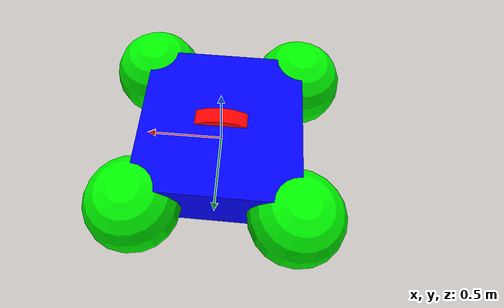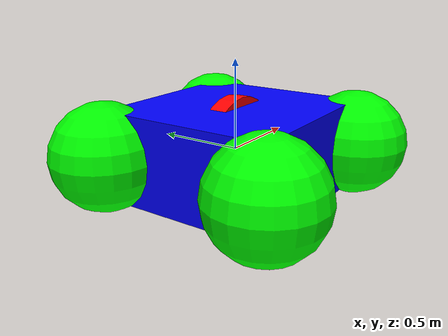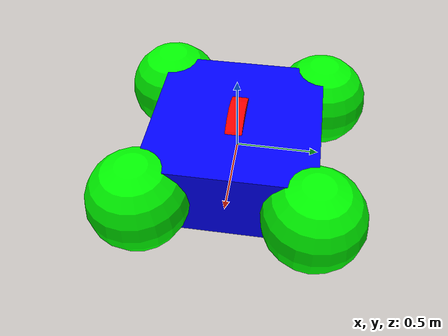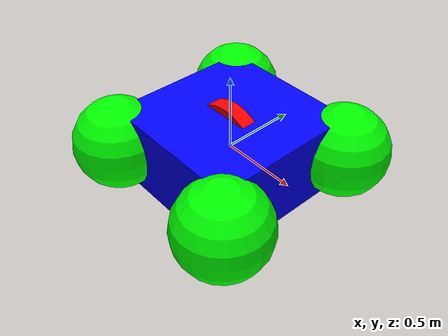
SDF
<sdf version='1.8'>
  <model name="HolonomicRobo">
  <pose>0 0 0 0 0 0</pose>

    <link name="base_footprint"/>

    <link name="base_link">
      <pose>0 0 0 0 0 0</pose>
      <inertial> <!--inertial properties of the link mass, inertia matix-->
        <mass>114.395</mass>
        <inertia>
            <ixx>9.5329</ixx>
            <ixy>0</ixy>
            <ixz>0</ixz>
            <iyy>38.1317</iyy>
            <iyz>0</iyz>
            <izz>47.6646</izz>
        </inertia>
      </inertial>
      <visual name='visual'>
        <geometry>
            <box>
                <size>1.0 1.0 0.5</size>
            </box>
        </geometry>
        <!--let's add color to our link-->
        <material>
            <ambient>0.0 0.0 1.0 1</ambient>
            <diffuse>0.0 0.0 1.0 1</diffuse>
            <specular>0.0 0.0 1.0 1</specular>
        </material>
      </visual>
    </link>

    <joint name="base_joint" type="fixed">
      <parent>base_footprint</parent>
      <child>base_link</child>
    </joint>

    <link name='caster_back_left_link'>
      <pose>-0.5 0.5 0 0 0 0</pose>
      <inertial>
        <mass>0.3</mass>
        <inertia>
          <ixx>3600000</ixx>
          <ixy>0.0</ixy>
          <ixz>0.0</ixz>
          <iyy>3600000</iyy>
          <iyz>0.0</iyz>
          <izz>3600000</izz>
        </inertia>
      </inertial>
      <visual name='caster_back_left_visual'>
          <geometry>
              <sphere>
                  <radius>0.3</radius>
              </sphere>
          </geometry>
          <material>
              <ambient>0.0 1 0.0 1</ambient>
              <diffuse>0.0 1 0.0 1</diffuse>
              <specular>0.0 1 0.0 1</specular>
          </material>
        </visual>
      <collision name='caster_back_left_collision'>
        <geometry>
          <sphere>
            <radius>0.3</radius>
          </sphere>
        </geometry>
      </collision>
    </link>
    <joint name='caster_back_left_joint' type='ball'>
      <parent>base_link</parent>
      <child>caster_back_left_link</child>
    </joint>

    <link name='caster_back_right_link'>
      <pose>-0.5 -0.5 0 0 0 0</pose>
      <inertial>
        <mass>0.3</mass>
        <inertia>
          <ixx>3600000</ixx>
          <ixy>0.0</ixy>
          <ixz>0.0</ixz>
          <iyy>3600000</iyy>
          <iyz>0.0</iyz>
          <izz>3600000</izz>
        </inertia>
      </inertial>
      <visual name='caster_back_right_visual'>
          <geometry>
              <sphere>
                  <radius>0.3</radius>
              </sphere>
          </geometry>
          <material>
              <ambient>0.0 1 0.0 1</ambient>
              <diffuse>0.0 1 0.0 1</diffuse>
              <specular>0.0 1 0.0 1</specular>
          </material>
        </visual>
      <collision name='caster_back_right_collision'>
        <geometry>
          <sphere>
            <radius>0.3</radius>
          </sphere>
        </geometry>
      </collision>
    </link>
    <joint name='caster_back_right_joint' type='ball'>
      <parent>base_link</parent>
      <child>caster_back_right_link</child>
    </joint>

    <link name='caster_front_left_link'>
      <pose>0.5 0.5 0 0 0 0</pose>
      <inertial>
        <mass>0.3</mass>
        <inertia>
          <ixx>3600000</ixx>
          <ixy>0.0</ixy>
          <ixz>0.0</ixz>
          <iyy>3600000</iyy>
          <iyz>0.0</iyz>
          <izz>3600000</izz>
        </inertia>
      </inertial>
      <visual name='caster_front_left_visual'>
          <geometry>
              <sphere>
                  <radius>0.3</radius>
              </sphere>
          </geometry>
          <material>
              <ambient>0.0 1 0.0 1</ambient>
              <diffuse>0.0 1 0.0 1</diffuse>
              <specular>0.0 1 0.0 1</specular>
          </material>
        </visual>
      <collision name='caster_front_leftcollision'>
        <geometry>
          <sphere>
            <radius>0.3</radius>
          </sphere>
        </geometry>
      </collision>
    </link>
    <joint name='caster_front_left_joint' type='ball'>
      <parent>base_link</parent>
      <child>caster_front_left_link</child>
    </joint>

    <link name='caster_front_right_link'>
      <pose>0.5 -0.5 0 0 0 0</pose>
      <inertial>
        <mass>0.3</mass>
        <inertia>
          <ixx>3600000</ixx>
          <ixy>0.0</ixy>
          <ixz>0.0</ixz>
          <iyy>3600000</iyy>
          <iyz>0.0</iyz>
          <izz>3600000</izz>
        </inertia>
      </inertial>
      <visual name='caster_front_right_visual'>
          <geometry>
              <sphere>
                  <radius>0.3</radius>
              </sphere>
          </geometry>
          <material>
              <ambient>0.0 1 0.0 1</ambient>
              <diffuse>0.0 1 0.0 1</diffuse>
              <specular>0.0 1 0.0 1</specular>
          </material>
        </visual>
      <collision name='caster_front_right_collision'>
        <geometry>
          <sphere>
            <radius>0.3</radius>
          </sphere>
        </geometry>
      </collision>
    </link>
    <joint name='caster_front_right_joint' type='ball'>
      <parent>base_link</parent>
      <child>caster_front_right_link</child>
    </joint>

    <link name="wheel_base_link">
      <pose>0 0 0 0 0 0</pose>
      <inertial>
        <inertia>
          <ixx>233333.333333</ixx>
          <ixy>0</ixy>
          <ixz>0</ixz>
          <iyy>233333.333333</iyy>
          <iyz>0</iyz>
          <izz>450000</izz>
      </inertia>
      <mass>0.01</mass>
      </inertial>
      <visual name="wheel_base_visual">
        <geometry>
          <cylinder>
            <radius>0.3</radius>
            <length>0.1</length>
          </cylinder>
          </geometry>
          <material>
            <ambient>1.0 0.0 0.0 1</ambient>
            <diffuse>1.0 0.0 0.0 1</diffuse>
            <specular>1.0 0.0 0.0 1</specular>
          </material>
      </visual>
    </link>
    <joint name="wheel_base_joint" type="revolute">
      <parent>base_link</parent>
      <child>wheel_base_link</child>
      <axis>
        <xyz>0 0 1</xyz>
      </axis>
    </joint>

    <link name="wheel_link">
      <pose>0 0 0 -1.57 0 0</pose>
      <inertial>
        <inertia>
          <ixx>2.333333</ixx>
          <ixy>0</ixy>
          <ixz>0</ixz>
          <iyy>2.333333</iyy>
          <iyz>0</iyz>
          <izz>4.5</izz>
      </inertia>
      <mass>0.0000001</mass>
      </inertial>
      <collision name="wheel_collision">
        <geometry>
          <cylinder>
            <radius>0.3</radius>
            <length>0.1</length>
          </cylinder>
        </geometry>
      </collision>
      <visual name="wheel_visual">
        <geometry>
          <cylinder>
            <radius>0.3</radius>
            <length>0.1</length>
          </cylinder>
          </geometry>
          <material>
            <ambient>1.0 0.0 0.0 1</ambient>
            <diffuse>1.0 0.0 0.0 1</diffuse>
            <specular>1.0 0.0 0.0 1</specular>
          </material>
      </visual>
    </link>
    <joint name="wheel_joint" type="revolute">
      <parent>wheel_base_link</parent>
      <child>wheel_link</child>
      <axis>
        <xyz>0 0 1</xyz>
      </axis>
    </joint>

    <!-- Global odometer -->
    <plugin
      filename="ignition-gazebo-odometry-publisher-system"
      name="ignition::gazebo::systems::OdometryPublisher">
      <odom_publish_frequency>50</odom_publish_frequency>
      <odom_topic>/odom</odom_topic>
      <odom_frame>odom</odom_frame>
      <robot_base_frame>base_footprint</robot_base_frame>
      <tf_topic>/odom/tf</tf_topic>
    </plugin>

    <!-- Joint state publisher -->
    <plugin filename="libignition-gazebo-joint-state-publisher-system.so"
      name="ignition::gazebo::systems::JointStatePublisher">
      <topic>joint_states</topic>
    </plugin>

    <plugin filename="libHolonomicPlugin.so" name="holonomic_sim::HolonomicPlugin">
      <wheel_joint>wheel_joint</wheel_joint>
      <base_joint>wheel_base_joint</base_joint>
    </plugin>

  </model>
</sdf>
